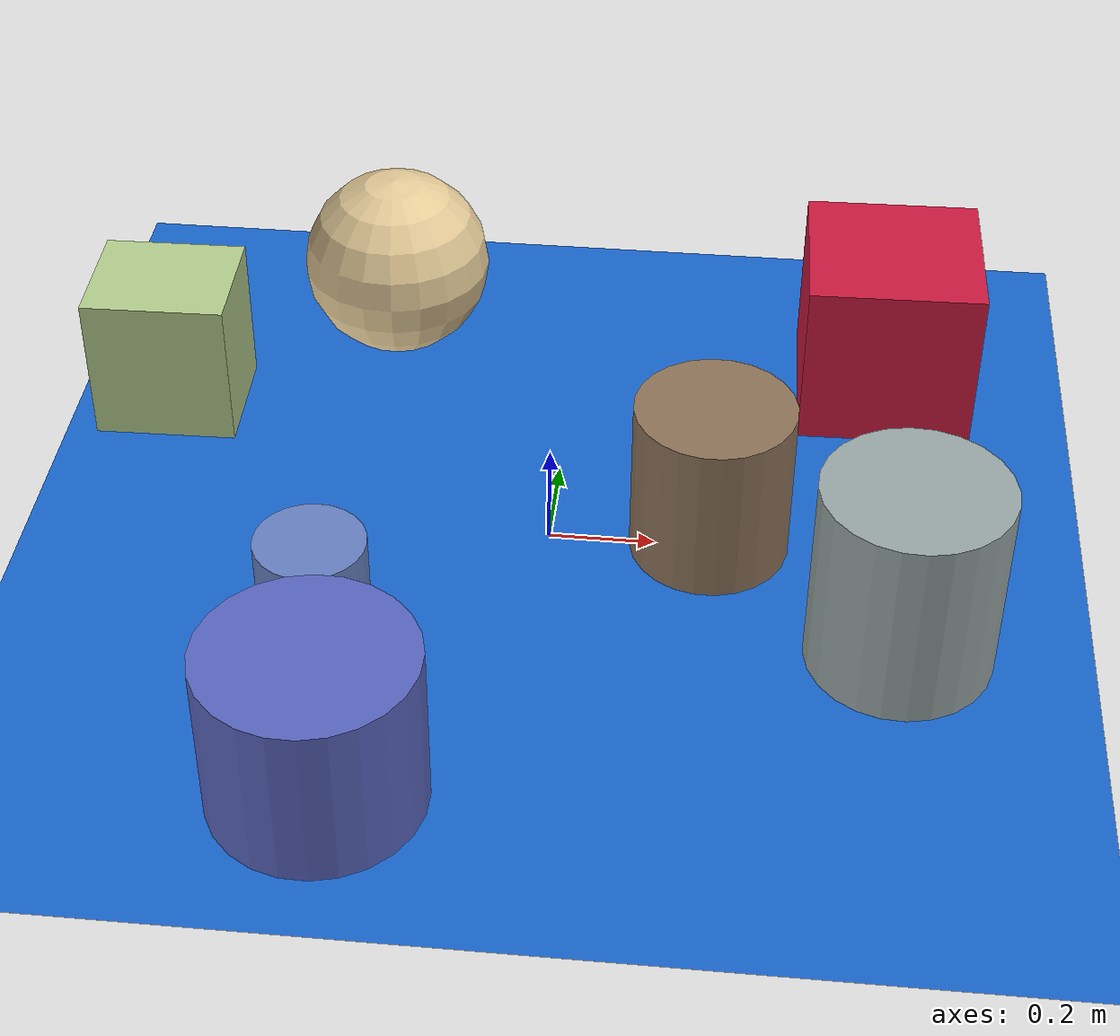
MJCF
<mujoco>
   <asset>
<texture type="skybox" builtin="gradient" rgb1="0.5 0.1 0.1" rgb2="0.9 0.8 0.9" width="256" height="256"/>
<texture name="gradient_0" builtin="gradient" rgb1="0.2 0.7 0.9" rgb2="0.5 0.1 0.6" width="200" height="200"/>
<texture name="gradient_1" builtin="gradient" rgb1="0.7 0.6 0.9" rgb2="0.7 1.0 0.2" width="200" height="200"/>
<texture name="flat_2" builtin="flat" rgb1="0.9 0.8 0.6" rgb2="0.9 0.8 0.6"  width="200" height="200"/>
<texture name="checker_3" builtin="checker" rgb1="0.8 0.8 0.5" rgb2="0.4 0.5 0.8" width="200" height="200"/>
<texture name="gradient_4" builtin="gradient" rgb1="0.1 0.8 0.8" rgb2="0.7 0.2 0.7" width="200" height="200"/>
<texture name="checker_5" builtin="checker" rgb1="0.8 0.0 0.3" rgb2="0.8 0.2 0.2" width="200" height="200"/>
<texture name="gradient_6" builtin="gradient" rgb1="0.9 0.3 0.6" rgb2="0.2 0.6 0.1" width="200" height="200"/><material name="gradient_0_mat" reflectance="0" texture="gradient_0" texuniform="true"/>
<material name="gradient_1_mat" reflectance="0" texture="gradient_1" texuniform="true"/>
<material name="flat_2_mat" reflectance="0" texture="flat_2" texuniform="true"/>
<material name="checker_3_mat" reflectance="0" texrepeat="6 6" texture="checker_3" texuniform="false" />
<material name="gradient_4_mat" reflectance="0" texture="gradient_4" texuniform="true"/>
<material name="checker_5_mat" reflectance="0" texrepeat="9 9" texture="checker_5" texuniform="false" />
<material name="gradient_6_mat" reflectance="0" texture="gradient_6" texuniform="true"/>
   </asset>

   <worldbody>
      <light diffuse=".9 .9 .9" pos="0 0 3" dir="0 0 -1"/>
     <geom type="plane" size="1 1 0.1" rgba="0.1 0.4 0.8 1"/>
<geom type="cylinder" pos="-0.32 -0.7 0.16" size="0.19 0.16 0.16" material="gradient_0_mat" euler="0 0 36" />
<geom type="box" pos="-0.8 0.35 0.15" size="0.14 0.12 0.15" material="gradient_1_mat" euler="0 0 1" />
<geom type="sphere" pos="-0.38 0.62 0.19" size="0.19 0.19 0.19" material="flat_2_mat" euler="0 0 77" />
<geom type="cylinder" pos="0.65 -0.26 0.19" size="0.17 0.19 0.19" material="checker_3_mat" euler="0 0 64" />
<geom type="cylinder" pos="-0.38 -0.36 0.13" size="0.1 0.13 0.13" material="gradient_4_mat" euler="0 0 78" />
<geom type="box" pos="0.63 0.53 0.17" size="0.17 0.17 0.17" material="checker_5_mat" euler="0 0 1" />
<geom type="cylinder" pos="0.3 0.01 0.16" size="0.15 0.16 0.16" material="gradient_6_mat" euler="0 0 82" /><camera euler="60 0 180" fovy="60" name="camera1" pos="-0.2 -1.5 1"></camera>   </worldbody>
</mujoco>
